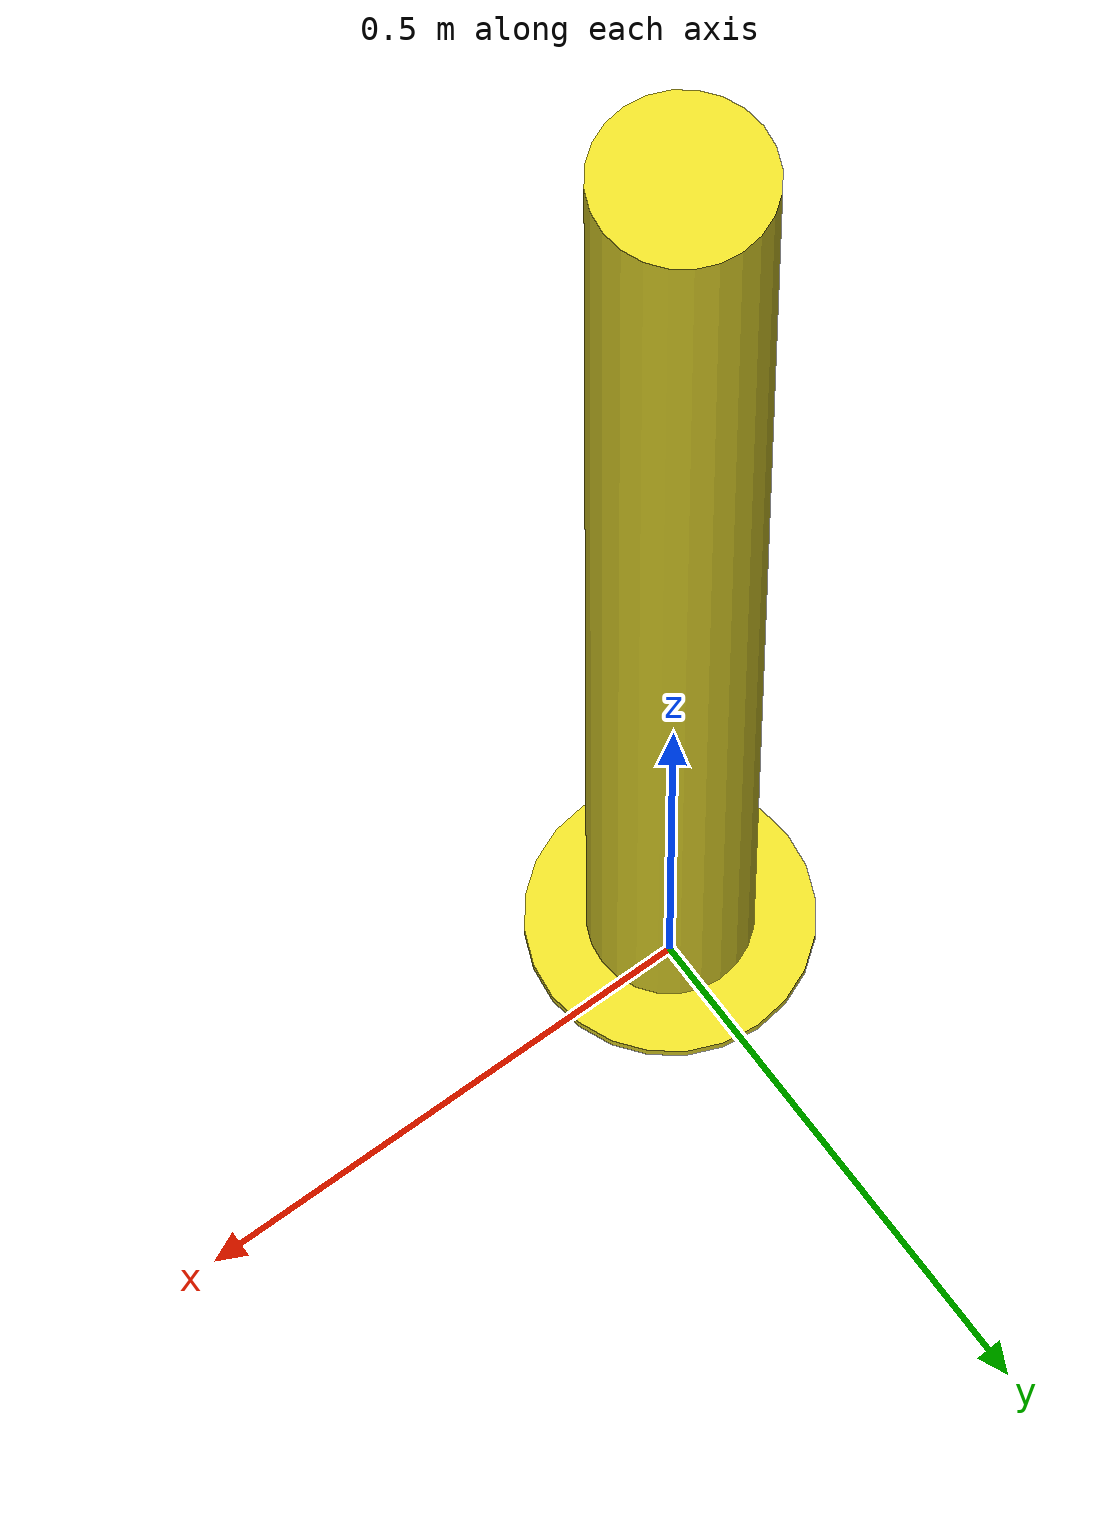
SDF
<?xml version='1.0'?>
<sdf version='1.6'>
  <model name='warehouse_yellow_bar'>
    <link name='link_0'>
      <pose frame=''>0 -0 0.0775 0 -0 0</pose>
      <inertial>
        <mass>10</mass>
        <inertia>
          <ixx>0.145833</ixx>
          <ixy>0</ixy>
          <ixz>0</ixz>
          <iyy>0.145833</iyy>
          <iyz>0</iyz>
          <izz>0.125</izz>
        </inertia>
        <pose frame=''>0 0 0 0 -0 0</pose>
      </inertial>
      <gravity>1</gravity>
      <self_collide>0</self_collide>
      <kinematic>0</kinematic>
      <visual name='visual'>
        <pose frame=''>0 0 0 0 -0 0</pose>
        <geometry>
          <cylinder>
            <radius>0.13</radius>
            <length>0.01</length>
          </cylinder>
        </geometry>
        <material>
          <lighting>1</lighting>
          <script>
            <uri>file://media/materials/scripts/gazebo.material</uri>
            <name>Gazebo/Yellow</name>
          </script>
          <ambient>1 1 0 1</ambient>
          <diffuse>1 1 0 1</diffuse>
          <specular>0 0 0 0</specular>
          <emissive>0 0 0 1</emissive>
          <shader type='vertex'>
            <normal_map>__default__</normal_map>
          </shader>
        </material>
        <cast_shadows>1</cast_shadows>
        <transparency>0</transparency>
      </visual>
      <collision name='collision'>
        <laser_retro>0</laser_retro>
        <max_contacts>10</max_contacts>
        <pose frame=''>0 0 0 0 -0 0</pose>
        <geometry>
          <cylinder>
            <radius>0.13</radius>
            <length>0.01</length>
          </cylinder>
        </geometry>
        <surface>
          <friction>
            <ode>
              <mu>1</mu>
              <mu2>1</mu2>
              <fdir1>0 0 0</fdir1>
              <slip1>0</slip1>
              <slip2>0</slip2>
            </ode>
            <torsional>
              <coefficient>1</coefficient>
              <patch_radius>0</patch_radius>
              <surface_radius>0</surface_radius>
              <use_patch_radius>1</use_patch_radius>
              <ode>
                <slip>0</slip>
              </ode>
            </torsional>
          </friction>
          <bounce>
            <restitution_coefficient>0</restitution_coefficient>
            <threshold>1e+06</threshold>
          </bounce>
          <contact>
            <collide_without_contact>0</collide_without_contact>
            <collide_without_contact_bitmask>1</collide_without_contact_bitmask>
            <collide_bitmask>1</collide_bitmask>
            <ode>
              <soft_cfm>0</soft_cfm>
              <soft_erp>0.2</soft_erp>
              <kp>1e+13</kp>
              <kd>1</kd>
              <max_vel>0.01</max_vel>
              <min_depth>0</min_depth>
            </ode>
            <bullet>
              <split_impulse>1</split_impulse>
              <split_impulse_penetration_threshold>-0.01</split_impulse_penetration_threshold>
              <soft_cfm>0</soft_cfm>
              <soft_erp>0.2</soft_erp>
              <kp>1e+13</kp>
              <kd>1</kd>
            </bullet>
          </contact>
        </surface>
      </collision>
    </link>
    <link name='link_1'>
      <pose frame=''>0 0 0.8275 0 -0 0</pose>
      <inertial>
        <mass>1000</mass>
        <inertia>
          <ixx>0.145833</ixx>
          <ixy>0</ixy>
          <ixz>0</ixz>
          <iyy>0.145833</iyy>
          <iyz>0</iyz>
          <izz>0.125</izz>
        </inertia>
        <pose frame=''>0 0 0 0 -0 0</pose>
      </inertial>
      <gravity>1</gravity>
      <self_collide>0</self_collide>
      <kinematic>0</kinematic>
      <visual name='visual'>
        <pose frame=''>0 0 0 0 -0 0</pose>
        <geometry>
          <cylinder>
            <radius>0.075</radius>
            <length>1.5</length>
          </cylinder>
        </geometry>
        <material>
          <lighting>1</lighting>
          <script>
            <uri>file://media/materials/scripts/gazebo.material</uri>
            <name>Gazebo/Yellow</name>
          </script>
          <ambient>1 1 0 1</ambient>
          <diffuse>1 1 0 1</diffuse>
          <specular>0 0 0 0</specular>
          <emissive>0 0 0 1</emissive>
          <shader type='vertex'>
            <normal_map>__default__</normal_map>
          </shader>
        </material>
        <cast_shadows>1</cast_shadows>
        <transparency>0</transparency>
      </visual>
      <collision name='collision'>
        <laser_retro>0</laser_retro>
        <max_contacts>10</max_contacts>
        <pose frame=''>0 0 0 0 -0 0</pose>
        <geometry>
          <cylinder>
            <radius>0.075</radius>
            <length>1.5</length>
          </cylinder>
        </geometry>
        <surface>
          <friction>
            <ode>
              <mu>1</mu>
              <mu2>1</mu2>
              <fdir1>0 0 0</fdir1>
              <slip1>0</slip1>
              <slip2>0</slip2>
            </ode>
            <torsional>
              <coefficient>1</coefficient>
              <patch_radius>0</patch_radius>
              <surface_radius>0</surface_radius>
              <use_patch_radius>1</use_patch_radius>
              <ode>
                <slip>0</slip>
              </ode>
            </torsional>
          </friction>
          <bounce>
            <restitution_coefficient>0</restitution_coefficient>
            <threshold>1e+06</threshold>
          </bounce>
          <contact>
            <collide_without_contact>0</collide_without_contact>
            <collide_without_contact_bitmask>1</collide_without_contact_bitmask>
            <collide_bitmask>1</collide_bitmask>
            <ode>
              <soft_cfm>0</soft_cfm>
              <soft_erp>0.2</soft_erp>
              <kp>1e+13</kp>
              <kd>1</kd>
              <max_vel>0.01</max_vel>
              <min_depth>0</min_depth>
            </ode>
            <bullet>
              <split_impulse>1</split_impulse>
              <split_impulse_penetration_threshold>-0.01</split_impulse_penetration_threshold>
              <soft_cfm>0</soft_cfm>
              <soft_erp>0.2</soft_erp>
              <kp>1e+13</kp>
              <kd>1</kd>
            </bullet>
          </contact>
        </surface>
      </collision>
    </link>
    <joint name='link_0_JOINT_0' type='fixed'>
      <parent>link_0</parent>
      <child>link_1</child>
      <pose frame=''>0 0 0 0 -0 0</pose>
      <physics>
        <ode>
          <limit>
            <cfm>0</cfm>
            <erp>0.2</erp>
          </limit>
          <suspension>
            <cfm>0</cfm>
            <erp>0.2</erp>
          </suspension>
        </ode>
      </physics>
    </joint>
    <static>0</static>
    <allow_auto_disable>1</allow_auto_disable>
  </model>
</sdf>
